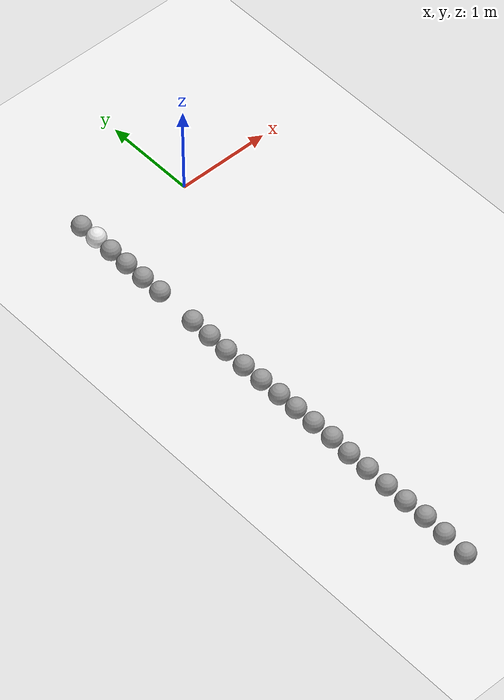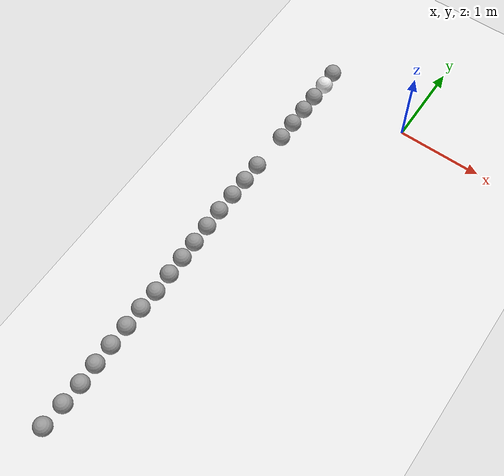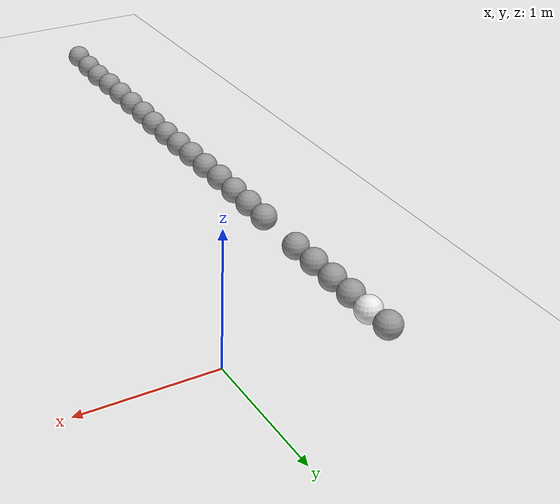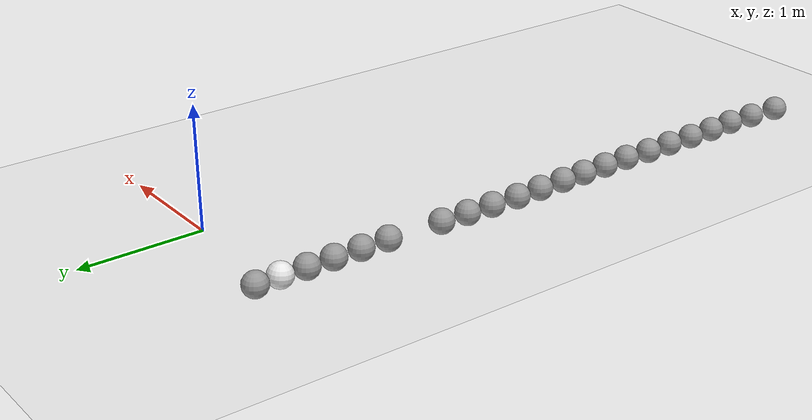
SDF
<sdf version="1.7">
 <world name="default">
  <model name="ground_plane">
   <static>1</static>
   <link name="link">
    <collision name="collision">
     <geometry><plane><normal>0 0 1</normal><size>100 100</size></plane></geometry>
     <surface>
      <contact><collide_bitmask>65535</collide_bitmask></contact>
      <friction><ode><mu>100</mu><mu2>50</mu2></ode></friction>
     </surface>
    </collision>
    <visual name="visual">
     <cast_shadows>0</cast_shadows>
     <geometry><plane><normal>0 0 1</normal><size>100 100</size></plane></geometry>
     <material>
      <script><uri>file://media/materials/scripts/gazebo.material</uri><name>Gazebo/White</name></script>
     </material>
    </visual>
   </link>
  </model>
  <model name="sphere">
   <link name="link_0">
    <inertial>
     <mass>1</mass>
     <inertia><ixx>0.1</ixx><ixy>0</ixy><ixz>0</ixz><iyy>0.1</iyy><iyz>0</iyz><izz>0.1</izz></inertia>
    </inertial>
    <visual name="visual">
     <geometry><sphere><radius>0.1</radius></sphere></geometry>
     <material>
      <lighting>1</lighting>
      <script><uri>file://media/materials/scripts/gazebo.material</uri><name>Gazebo/White</name></script>
      <shader type="pixel"><normal_map>__default__</normal_map></shader>
      <ambient>0.3 0.3 0.3 1</ambient>
      <diffuse>0.7 0.7 0.7 1</diffuse>
      <specular>0.01 0.01 0.01 1</specular>
      <emissive>0 0 0 1</emissive>
     </material>
    </visual>
    <collision name="collision">
     <geometry><sphere><radius>0.1</radius></sphere></geometry>
     <surface>
      <friction>
       <ode><mu>1</mu><mu2>1</mu2><fdir1>0 0 0</fdir1><slip1>0</slip1><slip2>0</slip2></ode>
       <torsional>
        <coefficient>1</coefficient>
        <patch_radius>0</patch_radius>
        <surface_radius>0</surface_radius>
        <use_patch_radius>1</use_patch_radius>
        <ode><slip>0</slip></ode>
       </torsional>
      </friction>
      <bounce><restitution_coefficient>0</restitution_coefficient><threshold>1e+06</threshold></bounce>
      <contact>
       <collide_without_contact>0</collide_without_contact>
       <collide_without_contact_bitmask>1</collide_without_contact_bitmask>
       <collide_bitmask>1</collide_bitmask>
       <ode>
        <soft_cfm>0</soft_cfm>
        <soft_erp>0.2</soft_erp>
        <kp>1e+13</kp>
        <kd>1</kd>
        <max_vel>0.01</max_vel>
        <min_depth>0</min_depth>
       </ode>
       <bullet>
        <split_impulse>1</split_impulse>
        <split_impulse_penetration_threshold>-0.01</split_impulse_penetration_threshold>
        <soft_cfm>0</soft_cfm>
        <soft_erp>0.2</soft_erp>
        <kp>1e+13</kp>
        <kd>1</kd>
       </bullet>
      </contact>
     </surface>
    </collision>
   </link>
   <static>0</static>
   <pose>-1.091 0.000207 0.1 0.097317 -0.000948 0.005574</pose>
  </model>
  <model name="sphere_0">
   <link name="link_0">
    <inertial>
     <mass>1</mass>
     <inertia><ixx>0.1</ixx><ixy>0</ixy><ixz>0</ixz><iyy>0.1</iyy><iyz>0</iyz><izz>0.1</izz></inertia>
    </inertial>
    <visual name="visual">
     <geometry><sphere><radius>0.1</radius></sphere></geometry>
     <material>
      <lighting>1</lighting>
      <script><uri>file://media/materials/scripts/gazebo.material</uri><name>Gazebo/Grey</name></script>
      <shader type="pixel"><normal_map>__default__</normal_map></shader>
      <ambient>0.3 0.3 0.3 1</ambient>
      <diffuse>0.7 0.7 0.7 1</diffuse>
      <specular>0.01 0.01 0.01 1</specular>
      <emissive>0 0 0 1</emissive>
     </material>
    </visual>
    <collision name="collision">
     <geometry><sphere><radius>0.1</radius></sphere></geometry>
     <surface>
      <friction>
       <ode><mu>1</mu><mu2>1</mu2><fdir1>0 0 0</fdir1><slip1>0</slip1><slip2>0</slip2></ode>
       <torsional>
        <coefficient>1</coefficient>
        <patch_radius>0</patch_radius>
        <surface_radius>0</surface_radius>
        <use_patch_radius>1</use_patch_radius>
        <ode><slip>0</slip></ode>
       </torsional>
      </friction>
      <bounce><restitution_coefficient>0</restitution_coefficient><threshold>1e+06</threshold></bounce>
      <contact>
       <collide_without_contact>0</collide_without_contact>
       <collide_without_contact_bitmask>1</collide_without_contact_bitmask>
       <collide_bitmask>1</collide_bitmask>
       <ode>
        <soft_cfm>0</soft_cfm>
        <soft_erp>0.2</soft_erp>
        <kp>1e+13</kp>
        <kd>1</kd>
        <max_vel>0.01</max_vel>
        <min_depth>0</min_depth>
       </ode>
       <bullet>
        <split_impulse>1</split_impulse>
        <split_impulse_penetration_threshold>-0.01</split_impulse_penetration_threshold>
        <soft_cfm>0</soft_cfm>
        <soft_erp>0.2</soft_erp>
        <kp>1e+13</kp>
        <kd>1</kd>
       </bullet>
      </contact>
     </surface>
    </collision>
   </link>
   <static>0</static>
   <pose>-1.10133 0.204448 0.1 -0.004823 -0.013797 -0.004458</pose>
  </model>
  <model name="sphere_8">
   <link name="link_0">
    <inertial>
     <mass>1</mass>
     <inertia><ixx>0.1</ixx><ixy>0</ixy><ixz>0</ixz><iyy>0.1</iyy><iyz>0</iyz><izz>0.1</izz></inertia>
    </inertial>
    <visual name="visual">
     <geometry><sphere><radius>0.1</radius></sphere></geometry>
     <material>
      <lighting>1</lighting>
      <script><uri>file://media/materials/scripts/gazebo.material</uri><name>Gazebo/Grey</name></script>
      <shader type="pixel"><normal_map>__default__</normal_map></shader>
      <ambient>0.3 0.3 0.3 1</ambient>
      <diffuse>0.7 0.7 0.7 1</diffuse>
      <specular>0.01 0.01 0.01 1</specular>
      <emissive>0 0 0 1</emissive>
     </material>
    </visual>
    <collision name="collision">
     <geometry><sphere><radius>0.1</radius></sphere></geometry>
     <surface>
      <friction>
       <ode><mu>1</mu><mu2>1</mu2><fdir1>0 0 0</fdir1><slip1>0</slip1><slip2>0</slip2></ode>
       <torsional>
        <coefficient>1</coefficient>
        <patch_radius>0</patch_radius>
        <surface_radius>0</surface_radius>
        <use_patch_radius>1</use_patch_radius>
        <ode><slip>0</slip></ode>
       </torsional>
      </friction>
      <bounce><restitution_coefficient>0</restitution_coefficient><threshold>1e+06</threshold></bounce>
      <contact>
       <collide_without_contact>0</collide_without_contact>
       <collide_without_contact_bitmask>1</collide_without_contact_bitmask>
       <collide_bitmask>1</collide_bitmask>
       <ode>
        <soft_cfm>0</soft_cfm>
        <soft_erp>0.2</soft_erp>
        <kp>1e+13</kp>
        <kd>1</kd>
        <max_vel>0.01</max_vel>
        <min_depth>0</min_depth>
       </ode>
       <bullet>
        <split_impulse>1</split_impulse>
        <split_impulse_penetration_threshold>-0.01</split_impulse_penetration_threshold>
        <soft_cfm>0</soft_cfm>
        <soft_erp>0.2</soft_erp>
        <kp>1e+13</kp>
        <kd>1</kd>
       </bullet>
      </contact>
     </surface>
    </collision>
   </link>
   <static>0</static>
   <pose>-1.09701 -0.2119 0.1 0 -0 0</pose>
  </model>
  <model name="sphere_9">
   <link name="link_0">
    <inertial>
     <mass>1</mass>
     <inertia><ixx>0.1</ixx><ixy>0</ixy><ixz>0</ixz><iyy>0.1</iyy><iyz>0</iyz><izz>0.1</izz></inertia>
    </inertial>
    <visual name="visual">
     <geometry><sphere><radius>0.1</radius></sphere></geometry>
     <material>
      <lighting>1</lighting>
      <script><uri>file://media/materials/scripts/gazebo.material</uri><name>Gazebo/Grey</name></script>
      <shader type="pixel"><normal_map>__default__</normal_map></shader>
      <ambient>0.3 0.3 0.3 1</ambient>
      <diffuse>0.7 0.7 0.7 1</diffuse>
      <specular>0.01 0.01 0.01 1</specular>
      <emissive>0 0 0 1</emissive>
     </material>
    </visual>
    <collision name="collision">
     <geometry><sphere><radius>0.1</radius></sphere></geometry>
     <surface>
      <friction>
       <ode><mu>1</mu><mu2>1</mu2><fdir1>0 0 0</fdir1><slip1>0</slip1><slip2>0</slip2></ode>
       <torsional>
        <coefficient>1</coefficient>
        <patch_radius>0</patch_radius>
        <surface_radius>0</surface_radius>
        <use_patch_radius>1</use_patch_radius>
        <ode><slip>0</slip></ode>
       </torsional>
      </friction>
      <bounce><restitution_coefficient>0</restitution_coefficient><threshold>1e+06</threshold></bounce>
      <contact>
       <collide_without_contact>0</collide_without_contact>
       <collide_without_contact_bitmask>1</collide_without_contact_bitmask>
       <collide_bitmask>1</collide_bitmask>
       <ode>
        <soft_cfm>0</soft_cfm>
        <soft_erp>0.2</soft_erp>
        <kp>1e+13</kp>
        <kd>1</kd>
        <max_vel>0.01</max_vel>
        <min_depth>0</min_depth>
       </ode>
       <bullet>
        <split_impulse>1</split_impulse>
        <split_impulse_penetration_threshold>-0.01</split_impulse_penetration_threshold>
        <soft_cfm>0</soft_cfm>
        <soft_erp>0.2</soft_erp>
        <kp>1e+13</kp>
        <kd>1</kd>
       </bullet>
      </contact>
     </surface>
    </collision>
   </link>
   <static>0</static>
   <pose>-1.09596 -0.433443 0.1 0 -0 0</pose>
  </model>
  <model name="sphere_10">
   <link name="link_0">
    <inertial>
     <mass>1</mass>
     <inertia><ixx>0.1</ixx><ixy>0</ixy><ixz>0</ixz><iyy>0.1</iyy><iyz>0</iyz><izz>0.1</izz></inertia>
    </inertial>
    <visual name="visual">
     <geometry><sphere><radius>0.1</radius></sphere></geometry>
     <material>
      <lighting>1</lighting>
      <script><uri>file://media/materials/scripts/gazebo.material</uri><name>Gazebo/Grey</name></script>
      <shader type="pixel"><normal_map>__default__</normal_map></shader>
      <ambient>0.3 0.3 0.3 1</ambient>
      <diffuse>0.7 0.7 0.7 1</diffuse>
      <specular>0.01 0.01 0.01 1</specular>
      <emissive>0 0 0 1</emissive>
     </material>
    </visual>
    <collision name="collision">
     <geometry><sphere><radius>0.1</radius></sphere></geometry>
     <surface>
      <friction>
       <ode><mu>1</mu><mu2>1</mu2><fdir1>0 0 0</fdir1><slip1>0</slip1><slip2>0</slip2></ode>
       <torsional>
        <coefficient>1</coefficient>
        <patch_radius>0</patch_radius>
        <surface_radius>0</surface_radius>
        <use_patch_radius>1</use_patch_radius>
        <ode><slip>0</slip></ode>
       </torsional>
      </friction>
      <bounce><restitution_coefficient>0</restitution_coefficient><threshold>1e+06</threshold></bounce>
      <contact>
       <collide_without_contact>0</collide_without_contact>
       <collide_without_contact_bitmask>1</collide_without_contact_bitmask>
       <collide_bitmask>1</collide_bitmask>
       <ode>
        <soft_cfm>0</soft_cfm>
        <soft_erp>0.2</soft_erp>
        <kp>1e+13</kp>
        <kd>1</kd>
        <max_vel>0.01</max_vel>
        <min_depth>0</min_depth>
       </ode>
       <bullet>
        <split_impulse>1</split_impulse>
        <split_impulse_penetration_threshold>-0.01</split_impulse_penetration_threshold>
        <soft_cfm>0</soft_cfm>
        <soft_erp>0.2</soft_erp>
        <kp>1e+13</kp>
        <kd>1</kd>
       </bullet>
      </contact>
     </surface>
    </collision>
   </link>
   <static>0</static>
   <pose>-1.09566 -0.665013 0.1 0 -0 0</pose>
  </model>
  <model name="sphere_11">
   <link name="link_0">
    <inertial>
     <mass>1</mass>
     <inertia><ixx>0.1</ixx><ixy>0</ixy><ixz>0</ixz><iyy>0.1</iyy><iyz>0</iyz><izz>0.1</izz></inertia>
    </inertial>
    <visual name="visual">
     <geometry><sphere><radius>0.1</radius></sphere></geometry>
     <material>
      <lighting>1</lighting>
      <script><uri>file://media/materials/scripts/gazebo.material</uri><name>Gazebo/Grey</name></script>
      <shader type="pixel"><normal_map>__default__</normal_map></shader>
      <ambient>0.3 0.3 0.3 1</ambient>
      <diffuse>0.7 0.7 0.7 1</diffuse>
      <specular>0.01 0.01 0.01 1</specular>
      <emissive>0 0 0 1</emissive>
     </material>
    </visual>
    <collision name="collision">
     <geometry><sphere><radius>0.1</radius></sphere></geometry>
     <surface>
      <friction>
       <ode><mu>1</mu><mu2>1</mu2><fdir1>0 0 0</fdir1><slip1>0</slip1><slip2>0</slip2></ode>
       <torsional>
        <coefficient>1</coefficient>
        <patch_radius>0</patch_radius>
        <surface_radius>0</surface_radius>
        <use_patch_radius>1</use_patch_radius>
        <ode><slip>0</slip></ode>
       </torsional>
      </friction>
      <bounce><restitution_coefficient>0</restitution_coefficient><threshold>1e+06</threshold></bounce>
      <contact>
       <collide_without_contact>0</collide_without_contact>
       <collide_without_contact_bitmask>1</collide_without_contact_bitmask>
       <collide_bitmask>1</collide_bitmask>
       <ode>
        <soft_cfm>0</soft_cfm>
        <soft_erp>0.2</soft_erp>
        <kp>1e+13</kp>
        <kd>1</kd>
        <max_vel>0.01</max_vel>
        <min_depth>0</min_depth>
       </ode>
       <bullet>
        <split_impulse>1</split_impulse>
        <split_impulse_penetration_threshold>-0.01</split_impulse_penetration_threshold>
        <soft_cfm>0</soft_cfm>
        <soft_erp>0.2</soft_erp>
        <kp>1e+13</kp>
        <kd>1</kd>
       </bullet>
      </contact>
     </surface>
    </collision>
   </link>
   <static>0</static>
   <pose>-1.0935 -0.901164 0.1 0 -0 0</pose>
  </model>
  <model name="sphere_25">
   <link name="link_0">
    <inertial>
     <mass>1</mass>
     <inertia><ixx>0.1</ixx><ixy>0</ixy><ixz>0</ixz><iyy>0.1</iyy><iyz>0</iyz><izz>0.1</izz></inertia>
    </inertial>
    <visual name="visual">
     <geometry><sphere><radius>0.1</radius></sphere></geometry>
     <material>
      <lighting>1</lighting>
      <script><uri>file://media/materials/scripts/gazebo.material</uri><name>Gazebo/Grey</name></script>
      <shader type="pixel"><normal_map>__default__</normal_map></shader>
      <ambient>0.3 0.3 0.3 1</ambient>
      <diffuse>0.7 0.7 0.7 1</diffuse>
      <specular>0.01 0.01 0.01 1</specular>
      <emissive>0 0 0 1</emissive>
     </material>
    </visual>
    <collision name="collision">
     <geometry><sphere><radius>0.1</radius></sphere></geometry>
     <surface>
      <friction>
       <ode><mu>1</mu><mu2>1</mu2><fdir1>0 0 0</fdir1><slip1>0</slip1><slip2>0</slip2></ode>
       <torsional>
        <coefficient>1</coefficient>
        <patch_radius>0</patch_radius>
        <surface_radius>0</surface_radius>
        <use_patch_radius>1</use_patch_radius>
        <ode><slip>0</slip></ode>
       </torsional>
      </friction>
      <bounce><restitution_coefficient>0</restitution_coefficient><threshold>1e+06</threshold></bounce>
      <contact>
       <collide_without_contact>0</collide_without_contact>
       <collide_without_contact_bitmask>1</collide_without_contact_bitmask>
       <collide_bitmask>1</collide_bitmask>
       <ode>
        <soft_cfm>0</soft_cfm>
        <soft_erp>0.2</soft_erp>
        <kp>1e+13</kp>
        <kd>1</kd>
        <max_vel>0.01</max_vel>
        <min_depth>0</min_depth>
       </ode>
       <bullet>
        <split_impulse>1</split_impulse>
        <split_impulse_penetration_threshold>-0.01</split_impulse_penetration_threshold>
        <soft_cfm>0</soft_cfm>
        <soft_erp>0.2</soft_erp>
        <kp>1e+13</kp>
        <kd>1</kd>
       </bullet>
      </contact>
     </surface>
    </collision>
   </link>
   <static>0</static>
   <pose>-1.10557 -1.36838 0.1 0 -0 0</pose>
  </model>
  <model name="sphere_26">
   <link name="link_0">
    <inertial>
     <mass>1</mass>
     <inertia><ixx>0.1</ixx><ixy>0</ixy><ixz>0</ixz><iyy>0.1</iyy><iyz>0</iyz><izz>0.1</izz></inertia>
    </inertial>
    <visual name="visual">
     <geometry><sphere><radius>0.1</radius></sphere></geometry>
     <material>
      <lighting>1</lighting>
      <script><uri>file://media/materials/scripts/gazebo.material</uri><name>Gazebo/Grey</name></script>
      <shader type="pixel"><normal_map>__default__</normal_map></shader>
      <ambient>0.3 0.3 0.3 1</ambient>
      <diffuse>0.7 0.7 0.7 1</diffuse>
      <specular>0.01 0.01 0.01 1</specular>
      <emissive>0 0 0 1</emissive>
     </material>
    </visual>
    <collision name="collision">
     <geometry><sphere><radius>0.1</radius></sphere></geometry>
     <surface>
      <friction>
       <ode><mu>1</mu><mu2>1</mu2><fdir1>0 0 0</fdir1><slip1>0</slip1><slip2>0</slip2></ode>
       <torsional>
        <coefficient>1</coefficient>
        <patch_radius>0</patch_radius>
        <surface_radius>0</surface_radius>
        <use_patch_radius>1</use_patch_radius>
        <ode><slip>0</slip></ode>
       </torsional>
      </friction>
      <bounce><restitution_coefficient>0</restitution_coefficient><threshold>1e+06</threshold></bounce>
      <contact>
       <collide_without_contact>0</collide_without_contact>
       <collide_without_contact_bitmask>1</collide_without_contact_bitmask>
       <collide_bitmask>1</collide_bitmask>
       <ode>
        <soft_cfm>0</soft_cfm>
        <soft_erp>0.2</soft_erp>
        <kp>1e+13</kp>
        <kd>1</kd>
        <max_vel>0.01</max_vel>
        <min_depth>0</min_depth>
       </ode>
       <bullet>
        <split_impulse>1</split_impulse>
        <split_impulse_penetration_threshold>-0.01</split_impulse_penetration_threshold>
        <soft_cfm>0</soft_cfm>
        <soft_erp>0.2</soft_erp>
        <kp>1e+13</kp>
        <kd>1</kd>
       </bullet>
      </contact>
     </surface>
    </collision>
   </link>
   <static>0</static>
   <pose>-1.10936 -1.60581 0.1 0 -0 0</pose>
  </model>
  <model name="sphere_27">
   <link name="link_0">
    <inertial>
     <mass>1</mass>
     <inertia><ixx>0.1</ixx><ixy>0</ixy><ixz>0</ixz><iyy>0.1</iyy><iyz>0</iyz><izz>0.1</izz></inertia>
    </inertial>
    <visual name="visual">
     <geometry><sphere><radius>0.1</radius></sphere></geometry>
     <material>
      <lighting>1</lighting>
      <script><uri>file://media/materials/scripts/gazebo.material</uri><name>Gazebo/Grey</name></script>
      <shader type="pixel"><normal_map>__default__</normal_map></shader>
      <ambient>0.3 0.3 0.3 1</ambient>
      <diffuse>0.7 0.7 0.7 1</diffuse>
      <specular>0.01 0.01 0.01 1</specular>
      <emissive>0 0 0 1</emissive>
     </material>
    </visual>
    <collision name="collision">
     <geometry><sphere><radius>0.1</radius></sphere></geometry>
     <surface>
      <friction>
       <ode><mu>1</mu><mu2>1</mu2><fdir1>0 0 0</fdir1><slip1>0</slip1><slip2>0</slip2></ode>
       <torsional>
        <coefficient>1</coefficient>
        <patch_radius>0</patch_radius>
        <surface_radius>0</surface_radius>
        <use_patch_radius>1</use_patch_radius>
        <ode><slip>0</slip></ode>
       </torsional>
      </friction>
      <bounce><restitution_coefficient>0</restitution_coefficient><threshold>1e+06</threshold></bounce>
      <contact>
       <collide_without_contact>0</collide_without_contact>
       <collide_without_contact_bitmask>1</collide_without_contact_bitmask>
       <collide_bitmask>1</collide_bitmask>
       <ode>
        <soft_cfm>0</soft_cfm>
        <soft_erp>0.2</soft_erp>
        <kp>1e+13</kp>
        <kd>1</kd>
        <max_vel>0.01</max_vel>
        <min_depth>0</min_depth>
       </ode>
       <bullet>
        <split_impulse>1</split_impulse>
        <split_impulse_penetration_threshold>-0.01</split_impulse_penetration_threshold>
        <soft_cfm>0</soft_cfm>
        <soft_erp>0.2</soft_erp>
        <kp>1e+13</kp>
        <kd>1</kd>
       </bullet>
      </contact>
     </surface>
    </collision>
   </link>
   <static>0</static>
   <pose>-1.11321 -1.83621 0.1 0 -0 0</pose>
  </model>
  <model name="sphere_28">
   <link name="link_0">
    <inertial>
     <mass>1</mass>
     <inertia><ixx>0.1</ixx><ixy>0</ixy><ixz>0</ixz><iyy>0.1</iyy><iyz>0</iyz><izz>0.1</izz></inertia>
    </inertial>
    <visual name="visual">
     <geometry><sphere><radius>0.1</radius></sphere></geometry>
     <material>
      <lighting>1</lighting>
      <script><uri>file://media/materials/scripts/gazebo.material</uri><name>Gazebo/Grey</name></script>
      <shader type="pixel"><normal_map>__default__</normal_map></shader>
      <ambient>0.3 0.3 0.3 1</ambient>
      <diffuse>0.7 0.7 0.7 1</diffuse>
      <specular>0.01 0.01 0.01 1</specular>
      <emissive>0 0 0 1</emissive>
     </material>
    </visual>
    <collision name="collision">
     <geometry><sphere><radius>0.1</radius></sphere></geometry>
     <surface>
      <friction>
       <ode><mu>1</mu><mu2>1</mu2><fdir1>0 0 0</fdir1><slip1>0</slip1><slip2>0</slip2></ode>
       <torsional>
        <coefficient>1</coefficient>
        <patch_radius>0</patch_radius>
        <surface_radius>0</surface_radius>
        <use_patch_radius>1</use_patch_radius>
        <ode><slip>0</slip></ode>
       </torsional>
      </friction>
      <bounce><restitution_coefficient>0</restitution_coefficient><threshold>1e+06</threshold></bounce>
      <contact>
       <collide_without_contact>0</collide_without_contact>
       <collide_without_contact_bitmask>1</collide_without_contact_bitmask>
       <collide_bitmask>1</collide_bitmask>
       <ode>
        <soft_cfm>0</soft_cfm>
        <soft_erp>0.2</soft_erp>
        <kp>1e+13</kp>
        <kd>1</kd>
        <max_vel>0.01</max_vel>
        <min_depth>0</min_depth>
       </ode>
       <bullet>
        <split_impulse>1</split_impulse>
        <split_impulse_penetration_threshold>-0.01</split_impulse_penetration_threshold>
        <soft_cfm>0</soft_cfm>
        <soft_erp>0.2</soft_erp>
        <kp>1e+13</kp>
        <kd>1</kd>
       </bullet>
      </contact>
     </surface>
    </collision>
   </link>
   <static>0</static>
   <pose>-1.11698 -2.07804 0.1 0 -0 0</pose>
  </model>
  <model name="sphere_29">
   <link name="link_0">
    <inertial>
     <mass>1</mass>
     <inertia><ixx>0.1</ixx><ixy>0</ixy><ixz>0</ixz><iyy>0.1</iyy><iyz>0</iyz><izz>0.1</izz></inertia>
    </inertial>
    <visual name="visual">
     <geometry><sphere><radius>0.1</radius></sphere></geometry>
     <material>
      <lighting>1</lighting>
      <script><uri>file://media/materials/scripts/gazebo.material</uri><name>Gazebo/Grey</name></script>
      <shader type="pixel"><normal_map>__default__</normal_map></shader>
      <ambient>0.3 0.3 0.3 1</ambient>
      <diffuse>0.7 0.7 0.7 1</diffuse>
      <specular>0.01 0.01 0.01 1</specular>
      <emissive>0 0 0 1</emissive>
     </material>
    </visual>
    <collision name="collision">
     <geometry><sphere><radius>0.1</radius></sphere></geometry>
     <surface>
      <friction>
       <ode><mu>1</mu><mu2>1</mu2><fdir1>0 0 0</fdir1><slip1>0</slip1><slip2>0</slip2></ode>
       <torsional>
        <coefficient>1</coefficient>
        <patch_radius>0</patch_radius>
        <surface_radius>0</surface_radius>
        <use_patch_radius>1</use_patch_radius>
        <ode><slip>0</slip></ode>
       </torsional>
      </friction>
      <bounce><restitution_coefficient>0</restitution_coefficient><threshold>1e+06</threshold></bounce>
      <contact>
       <collide_without_contact>0</collide_without_contact>
       <collide_without_contact_bitmask>1</collide_without_contact_bitmask>
       <collide_bitmask>1</collide_bitmask>
       <ode>
        <soft_cfm>0</soft_cfm>
        <soft_erp>0.2</soft_erp>
        <kp>1e+13</kp>
        <kd>1</kd>
        <max_vel>0.01</max_vel>
        <min_depth>0</min_depth>
       </ode>
       <bullet>
        <split_impulse>1</split_impulse>
        <split_impulse_penetration_threshold>-0.01</split_impulse_penetration_threshold>
        <soft_cfm>0</soft_cfm>
        <soft_erp>0.2</soft_erp>
        <kp>1e+13</kp>
        <kd>1</kd>
       </bullet>
      </contact>
     </surface>
    </collision>
   </link>
   <static>0</static>
   <pose>-1.11081 -2.30897 0.1 0 -0 0</pose>
  </model>
  <model name="sphere_30">
   <link name="link_0">
    <inertial>
     <mass>1</mass>
     <inertia><ixx>0.1</ixx><ixy>0</ixy><ixz>0</ixz><iyy>0.1</iyy><iyz>0</iyz><izz>0.1</izz></inertia>
    </inertial>
    <visual name="visual">
     <geometry><sphere><radius>0.1</radius></sphere></geometry>
     <material>
      <lighting>1</lighting>
      <script><uri>file://media/materials/scripts/gazebo.material</uri><name>Gazebo/Grey</name></script>
      <shader type="pixel"><normal_map>__default__</normal_map></shader>
      <ambient>0.3 0.3 0.3 1</ambient>
      <diffuse>0.7 0.7 0.7 1</diffuse>
      <specular>0.01 0.01 0.01 1</specular>
      <emissive>0 0 0 1</emissive>
     </material>
    </visual>
    <collision name="collision">
     <geometry><sphere><radius>0.1</radius></sphere></geometry>
     <surface>
      <friction>
       <ode><mu>1</mu><mu2>1</mu2><fdir1>0 0 0</fdir1><slip1>0</slip1><slip2>0</slip2></ode>
       <torsional>
        <coefficient>1</coefficient>
        <patch_radius>0</patch_radius>
        <surface_radius>0</surface_radius>
        <use_patch_radius>1</use_patch_radius>
        <ode><slip>0</slip></ode>
       </torsional>
      </friction>
      <bounce><restitution_coefficient>0</restitution_coefficient><threshold>1e+06</threshold></bounce>
      <contact>
       <collide_without_contact>0</collide_without_contact>
       <collide_without_contact_bitmask>1</collide_without_contact_bitmask>
       <collide_bitmask>1</collide_bitmask>
       <ode>
        <soft_cfm>0</soft_cfm>
        <soft_erp>0.2</soft_erp>
        <kp>1e+13</kp>
        <kd>1</kd>
        <max_vel>0.01</max_vel>
        <min_depth>0</min_depth>
       </ode>
       <bullet>
        <split_impulse>1</split_impulse>
        <split_impulse_penetration_threshold>-0.01</split_impulse_penetration_threshold>
        <soft_cfm>0</soft_cfm>
        <soft_erp>0.2</soft_erp>
        <kp>1e+13</kp>
        <kd>1</kd>
       </bullet>
      </contact>
     </surface>
    </collision>
   </link>
   <static>0</static>
   <pose>-1.10719 -2.54269 0.1 0 -0 0</pose>
  </model>
  <model name="sphere_31">
   <link name="link_0">
    <inertial>
     <mass>1</mass>
     <inertia><ixx>0.1</ixx><ixy>0</ixy><ixz>0</ixz><iyy>0.1</iyy><iyz>0</iyz><izz>0.1</izz></inertia>
    </inertial>
    <visual name="visual">
     <geometry><sphere><radius>0.1</radius></sphere></geometry>
     <material>
      <lighting>1</lighting>
      <script><uri>file://media/materials/scripts/gazebo.material</uri><name>Gazebo/Grey</name></script>
      <shader type="pixel"><normal_map>__default__</normal_map></shader>
      <ambient>0.3 0.3 0.3 1</ambient>
      <diffuse>0.7 0.7 0.7 1</diffuse>
      <specular>0.01 0.01 0.01 1</specular>
      <emissive>0 0 0 1</emissive>
     </material>
    </visual>
    <collision name="collision">
     <geometry><sphere><radius>0.1</radius></sphere></geometry>
     <surface>
      <friction>
       <ode><mu>1</mu><mu2>1</mu2><fdir1>0 0 0</fdir1><slip1>0</slip1><slip2>0</slip2></ode>
       <torsional>
        <coefficient>1</coefficient>
        <patch_radius>0</patch_radius>
        <surface_radius>0</surface_radius>
        <use_patch_radius>1</use_patch_radius>
        <ode><slip>0</slip></ode>
       </torsional>
      </friction>
      <bounce><restitution_coefficient>0</restitution_coefficient><threshold>1e+06</threshold></bounce>
      <contact>
       <collide_without_contact>0</collide_without_contact>
       <collide_without_contact_bitmask>1</collide_without_contact_bitmask>
       <collide_bitmask>1</collide_bitmask>
       <ode>
        <soft_cfm>0</soft_cfm>
        <soft_erp>0.2</soft_erp>
        <kp>1e+13</kp>
        <kd>1</kd>
        <max_vel>0.01</max_vel>
        <min_depth>0</min_depth>
       </ode>
       <bullet>
        <split_impulse>1</split_impulse>
        <split_impulse_penetration_threshold>-0.01</split_impulse_penetration_threshold>
        <soft_cfm>0</soft_cfm>
        <soft_erp>0.2</soft_erp>
        <kp>1e+13</kp>
        <kd>1</kd>
       </bullet>
      </contact>
     </surface>
    </collision>
   </link>
   <static>0</static>
   <pose>-1.10297 -2.7617 0.1 0 -0 0</pose>
  </model>
  <model name="sphere_32">
   <link name="link_0">
    <inertial>
     <mass>1</mass>
     <inertia><ixx>0.1</ixx><ixy>0</ixy><ixz>0</ixz><iyy>0.1</iyy><iyz>0</iyz><izz>0.1</izz></inertia>
    </inertial>
    <visual name="visual">
     <geometry><sphere><radius>0.1</radius></sphere></geometry>
     <material>
      <lighting>1</lighting>
      <script><uri>file://media/materials/scripts/gazebo.material</uri><name>Gazebo/Grey</name></script>
      <shader type="pixel"><normal_map>__default__</normal_map></shader>
      <ambient>0.3 0.3 0.3 1</ambient>
      <diffuse>0.7 0.7 0.7 1</diffuse>
      <specular>0.01 0.01 0.01 1</specular>
      <emissive>0 0 0 1</emissive>
     </material>
    </visual>
    <collision name="collision">
     <geometry><sphere><radius>0.1</radius></sphere></geometry>
     <surface>
      <friction>
       <ode><mu>1</mu><mu2>1</mu2><fdir1>0 0 0</fdir1><slip1>0</slip1><slip2>0</slip2></ode>
       <torsional>
        <coefficient>1</coefficient>
        <patch_radius>0</patch_radius>
        <surface_radius>0</surface_radius>
        <use_patch_radius>1</use_patch_radius>
        <ode><slip>0</slip></ode>
       </torsional>
      </friction>
      <bounce><restitution_coefficient>0</restitution_coefficient><threshold>1e+06</threshold></bounce>
      <contact>
       <collide_without_contact>0</collide_without_contact>
       <collide_without_contact_bitmask>1</collide_without_contact_bitmask>
       <collide_bitmask>1</collide_bitmask>
       <ode>
        <soft_cfm>0</soft_cfm>
        <soft_erp>0.2</soft_erp>
        <kp>1e+13</kp>
        <kd>1</kd>
        <max_vel>0.01</max_vel>
        <min_depth>0</min_depth>
       </ode>
       <bullet>
        <split_impulse>1</split_impulse>
        <split_impulse_penetration_threshold>-0.01</split_impulse_penetration_threshold>
        <soft_cfm>0</soft_cfm>
        <soft_erp>0.2</soft_erp>
        <kp>1e+13</kp>
        <kd>1</kd>
       </bullet>
      </contact>
     </surface>
    </collision>
   </link>
   <static>0</static>
   <pose>-1.09982 -2.98994 0.1 0 -0 0</pose>
  </model>
  <model name="sphere_33">
   <link name="link_0">
    <inertial>
     <mass>1</mass>
     <inertia><ixx>0.1</ixx><ixy>0</ixy><ixz>0</ixz><iyy>0.1</iyy><iyz>0</iyz><izz>0.1</izz></inertia>
    </inertial>
    <visual name="visual">
     <geometry><sphere><radius>0.1</radius></sphere></geometry>
     <material>
      <lighting>1</lighting>
      <script><uri>file://media/materials/scripts/gazebo.material</uri><name>Gazebo/Grey</name></script>
      <shader type="pixel"><normal_map>__default__</normal_map></shader>
      <ambient>0.3 0.3 0.3 1</ambient>
      <diffuse>0.7 0.7 0.7 1</diffuse>
      <specular>0.01 0.01 0.01 1</specular>
      <emissive>0 0 0 1</emissive>
     </material>
    </visual>
    <collision name="collision">
     <geometry><sphere><radius>0.1</radius></sphere></geometry>
     <surface>
      <friction>
       <ode><mu>1</mu><mu2>1</mu2><fdir1>0 0 0</fdir1><slip1>0</slip1><slip2>0</slip2></ode>
       <torsional>
        <coefficient>1</coefficient>
        <patch_radius>0</patch_radius>
        <surface_radius>0</surface_radius>
        <use_patch_radius>1</use_patch_radius>
        <ode><slip>0</slip></ode>
       </torsional>
      </friction>
      <bounce><restitution_coefficient>0</restitution_coefficient><threshold>1e+06</threshold></bounce>
      <contact>
       <collide_without_contact>0</collide_without_contact>
       <collide_without_contact_bitmask>1</collide_without_contact_bitmask>
       <collide_bitmask>1</collide_bitmask>
       <ode>
        <soft_cfm>0</soft_cfm>
        <soft_erp>0.2</soft_erp>
        <kp>1e+13</kp>
        <kd>1</kd>
        <max_vel>0.01</max_vel>
        <min_depth>0</min_depth>
       </ode>
       <bullet>
        <split_impulse>1</split_impulse>
        <split_impulse_penetration_threshold>-0.01</split_impulse_penetration_threshold>
        <soft_cfm>0</soft_cfm>
        <soft_erp>0.2</soft_erp>
        <kp>1e+13</kp>
        <kd>1</kd>
       </bullet>
      </contact>
     </surface>
    </collision>
   </link>
   <static>0</static>
   <pose>-1.09408 -3.22588 0.1 0 -0 0</pose>
  </model>
  <model name="sphere_34">
   <link name="link_0">
    <inertial>
     <mass>1</mass>
     <inertia><ixx>0.1</ixx><ixy>0</ixy><ixz>0</ixz><iyy>0.1</iyy><iyz>0</iyz><izz>0.1</izz></inertia>
    </inertial>
    <visual name="visual">
     <geometry><sphere><radius>0.1</radius></sphere></geometry>
     <material>
      <lighting>1</lighting>
      <script><uri>file://media/materials/scripts/gazebo.material</uri><name>Gazebo/Grey</name></script>
      <shader type="pixel"><normal_map>__default__</normal_map></shader>
      <ambient>0.3 0.3 0.3 1</ambient>
      <diffuse>0.7 0.7 0.7 1</diffuse>
      <specular>0.01 0.01 0.01 1</specular>
      <emissive>0 0 0 1</emissive>
     </material>
    </visual>
    <collision name="collision">
     <geometry><sphere><radius>0.1</radius></sphere></geometry>
     <surface>
      <friction>
       <ode><mu>1</mu><mu2>1</mu2><fdir1>0 0 0</fdir1><slip1>0</slip1><slip2>0</slip2></ode>
       <torsional>
        <coefficient>1</coefficient>
        <patch_radius>0</patch_radius>
        <surface_radius>0</surface_radius>
        <use_patch_radius>1</use_patch_radius>
        <ode><slip>0</slip></ode>
       </torsional>
      </friction>
      <bounce><restitution_coefficient>0</restitution_coefficient><threshold>1e+06</threshold></bounce>
      <contact>
       <collide_without_contact>0</collide_without_contact>
       <collide_without_contact_bitmask>1</collide_without_contact_bitmask>
       <collide_bitmask>1</collide_bitmask>
       <ode>
        <soft_cfm>0</soft_cfm>
        <soft_erp>0.2</soft_erp>
        <kp>1e+13</kp>
        <kd>1</kd>
        <max_vel>0.01</max_vel>
        <min_depth>0</min_depth>
       </ode>
       <bullet>
        <split_impulse>1</split_impulse>
        <split_impulse_penetration_threshold>-0.01</split_impulse_penetration_threshold>
        <soft_cfm>0</soft_cfm>
        <soft_erp>0.2</soft_erp>
        <kp>1e+13</kp>
        <kd>1</kd>
       </bullet>
      </contact>
     </surface>
    </collision>
   </link>
   <static>0</static>
   <pose>-1.10557 -3.45938 0.1 0 -0 0</pose>
  </model>
  <model name="sphere_35">
   <link name="link_0">
    <inertial>
     <mass>1</mass>
     <inertia><ixx>0.1</ixx><ixy>0</ixy><ixz>0</ixz><iyy>0.1</iyy><iyz>0</iyz><izz>0.1</izz></inertia>
    </inertial>
    <visual name="visual">
     <geometry><sphere><radius>0.1</radius></sphere></geometry>
     <material>
      <lighting>1</lighting>
      <script><uri>file://media/materials/scripts/gazebo.material</uri><name>Gazebo/Grey</name></script>
      <shader type="pixel"><normal_map>__default__</normal_map></shader>
      <ambient>0.3 0.3 0.3 1</ambient>
      <diffuse>0.7 0.7 0.7 1</diffuse>
      <specular>0.01 0.01 0.01 1</specular>
      <emissive>0 0 0 1</emissive>
     </material>
    </visual>
    <collision name="collision">
     <geometry><sphere><radius>0.1</radius></sphere></geometry>
     <surface>
      <friction>
       <ode><mu>1</mu><mu2>1</mu2><fdir1>0 0 0</fdir1><slip1>0</slip1><slip2>0</slip2></ode>
       <torsional>
        <coefficient>1</coefficient>
        <patch_radius>0</patch_radius>
        <surface_radius>0</surface_radius>
        <use_patch_radius>1</use_patch_radius>
        <ode><slip>0</slip></ode>
       </torsional>
      </friction>
      <bounce><restitution_coefficient>0</restitution_coefficient><threshold>1e+06</threshold></bounce>
      <contact>
       <collide_without_contact>0</collide_without_contact>
       <collide_without_contact_bitmask>1</collide_without_contact_bitmask>
       <collide_bitmask>1</collide_bitmask>
       <ode>
        <soft_cfm>0</soft_cfm>
        <soft_erp>0.2</soft_erp>
        <kp>1e+13</kp>
        <kd>1</kd>
        <max_vel>0.01</max_vel>
        <min_depth>0</min_depth>
       </ode>
       <bullet>
        <split_impulse>1</split_impulse>
        <split_impulse_penetration_threshold>-0.01</split_impulse_penetration_threshold>
        <soft_cfm>0</soft_cfm>
        <soft_erp>0.2</soft_erp>
        <kp>1e+13</kp>
        <kd>1</kd>
       </bullet>
      </contact>
     </surface>
    </collision>
   </link>
   <static>0</static>
   <pose>-1.10306 -3.69614 0.1 0 -0 0</pose>
  </model>
  <model name="sphere_36">
   <link name="link_0">
    <inertial>
     <mass>1</mass>
     <inertia><ixx>0.1</ixx><ixy>0</ixy><ixz>0</ixz><iyy>0.1</iyy><iyz>0</iyz><izz>0.1</izz></inertia>
    </inertial>
    <visual name="visual">
     <geometry><sphere><radius>0.1</radius></sphere></geometry>
     <material>
      <lighting>1</lighting>
      <script><uri>file://media/materials/scripts/gazebo.material</uri><name>Gazebo/Grey</name></script>
      <shader type="pixel"><normal_map>__default__</normal_map></shader>
      <ambient>0.3 0.3 0.3 1</ambient>
      <diffuse>0.7 0.7 0.7 1</diffuse>
      <specular>0.01 0.01 0.01 1</specular>
      <emissive>0 0 0 1</emissive>
     </material>
    </visual>
    <collision name="collision">
     <geometry><sphere><radius>0.1</radius></sphere></geometry>
     <surface>
      <friction>
       <ode><mu>1</mu><mu2>1</mu2><fdir1>0 0 0</fdir1><slip1>0</slip1><slip2>0</slip2></ode>
       <torsional>
        <coefficient>1</coefficient>
        <patch_radius>0</patch_radius>
        <surface_radius>0</surface_radius>
        <use_patch_radius>1</use_patch_radius>
        <ode><slip>0</slip></ode>
       </torsional>
      </friction>
      <bounce><restitution_coefficient>0</restitution_coefficient><threshold>1e+06</threshold></bounce>
      <contact>
       <collide_without_contact>0</collide_without_contact>
       <collide_without_contact_bitmask>1</collide_without_contact_bitmask>
       <collide_bitmask>1</collide_bitmask>
       <ode>
        <soft_cfm>0</soft_cfm>
        <soft_erp>0.2</soft_erp>
        <kp>1e+13</kp>
        <kd>1</kd>
        <max_vel>0.01</max_vel>
        <min_depth>0</min_depth>
       </ode>
       <bullet>
        <split_impulse>1</split_impulse>
        <split_impulse_penetration_threshold>-0.01</split_impulse_penetration_threshold>
        <soft_cfm>0</soft_cfm>
        <soft_erp>0.2</soft_erp>
        <kp>1e+13</kp>
        <kd>1</kd>
       </bullet>
      </contact>
     </surface>
    </collision>
   </link>
   <static>0</static>
   <pose>-1.10499 -3.94235 0.1 0 -0 0</pose>
  </model>
  <model name="sphere_103">
   <link name="link_0">
    <inertial>
     <mass>1</mass>
     <inertia><ixx>0.1</ixx><ixy>0</ixy><ixz>0</ixz><iyy>0.1</iyy><iyz>0</iyz><izz>0.1</izz></inertia>
    </inertial>
    <visual name="visual">
     <geometry><sphere><radius>0.1</radius></sphere></geometry>
     <material>
      <lighting>1</lighting>
      <script><uri>file://media/materials/scripts/gazebo.material</uri><name>Gazebo/Grey</name></script>
      <shader type="pixel"><normal_map>__default__</normal_map></shader>
      <ambient>0.3 0.3 0.3 1</ambient>
      <diffuse>0.7 0.7 0.7 1</diffuse>
      <specular>0.01 0.01 0.01 1</specular>
      <emissive>0 0 0 1</emissive>
     </material>
    </visual>
    <collision name="collision">
     <geometry><sphere><radius>0.1</radius></sphere></geometry>
     <surface>
      <friction>
       <ode><mu>1</mu><mu2>1</mu2><fdir1>0 0 0</fdir1><slip1>0</slip1><slip2>0</slip2></ode>
       <torsional>
        <coefficient>1</coefficient>
        <patch_radius>0</patch_radius>
        <surface_radius>0</surface_radius>
        <use_patch_radius>1</use_patch_radius>
        <ode><slip>0</slip></ode>
       </torsional>
      </friction>
      <bounce><restitution_coefficient>0</restitution_coefficient><threshold>1e+06</threshold></bounce>
      <contact>
       <collide_without_contact>0</collide_without_contact>
       <collide_without_contact_bitmask>1</collide_without_contact_bitmask>
       <collide_bitmask>1</collide_bitmask>
       <ode>
        <soft_cfm>0</soft_cfm>
        <soft_erp>0.2</soft_erp>
        <kp>1e+13</kp>
        <kd>1</kd>
        <max_vel>0.01</max_vel>
        <min_depth>0</min_depth>
       </ode>
       <bullet>
        <split_impulse>1</split_impulse>
        <split_impulse_penetration_threshold>-0.01</split_impulse_penetration_threshold>
        <soft_cfm>0</soft_cfm>
        <soft_erp>0.2</soft_erp>
        <kp>1e+13</kp>
        <kd>1</kd>
       </bullet>
      </contact>
     </surface>
    </collision>
   </link>
   <static>0</static>
   <pose>-1.10405 -4.18372 0.1 0 -0 0</pose>
  </model>
  <model name="sphere_104">
   <link name="link_0">
    <inertial>
     <mass>1</mass>
     <inertia><ixx>0.1</ixx><ixy>0</ixy><ixz>0</ixz><iyy>0.1</iyy><iyz>0</iyz><izz>0.1</izz></inertia>
    </inertial>
    <visual name="visual">
     <geometry><sphere><radius>0.1</radius></sphere></geometry>
     <material>
      <lighting>1</lighting>
      <script><uri>file://media/materials/scripts/gazebo.material</uri><name>Gazebo/Grey</name></script>
      <shader type="pixel"><normal_map>__default__</normal_map></shader>
      <ambient>0.3 0.3 0.3 1</ambient>
      <diffuse>0.7 0.7 0.7 1</diffuse>
      <specular>0.01 0.01 0.01 1</specular>
      <emissive>0 0 0 1</emissive>
     </material>
    </visual>
    <collision name="collision">
     <geometry><sphere><radius>0.1</radius></sphere></geometry>
     <surface>
      <friction>
       <ode><mu>1</mu><mu2>1</mu2><fdir1>0 0 0</fdir1><slip1>0</slip1><slip2>0</slip2></ode>
       <torsional>
        <coefficient>1</coefficient>
        <patch_radius>0</patch_radius>
        <surface_radius>0</surface_radius>
        <use_patch_radius>1</use_patch_radius>
        <ode><slip>0</slip></ode>
       </torsional>
      </friction>
      <bounce><restitution_coefficient>0</restitution_coefficient><threshold>1e+06</threshold></bounce>
      <contact>
       <collide_without_contact>0</collide_without_contact>
       <collide_without_contact_bitmask>1</collide_without_contact_bitmask>
       <collide_bitmask>1</collide_bitmask>
       <ode>
        <soft_cfm>0</soft_cfm>
        <soft_erp>0.2</soft_erp>
        <kp>1e+13</kp>
        <kd>1</kd>
        <max_vel>0.01</max_vel>
        <min_depth>0</min_depth>
       </ode>
       <bullet>
        <split_impulse>1</split_impulse>
        <split_impulse_penetration_threshold>-0.01</split_impulse_penetration_threshold>
        <soft_cfm>0</soft_cfm>
        <soft_erp>0.2</soft_erp>
        <kp>1e+13</kp>
        <kd>1</kd>
       </bullet>
      </contact>
     </surface>
    </collision>
   </link>
   <static>0</static>
   <pose>-1.09386 -4.4229 0.1 0 -0 0</pose>
  </model>
  <model name="sphere_109">
   <link name="link_0">
    <inertial>
     <mass>1</mass>
     <inertia><ixx>0.1</ixx><ixy>0</ixy><ixz>0</ixz><iyy>0.1</iyy><iyz>0</iyz><izz>0.1</izz></inertia>
    </inertial>
    <visual name="visual">
     <geometry><sphere><radius>0.1</radius></sphere></geometry>
     <material>
      <lighting>1</lighting>
      <script><uri>file://media/materials/scripts/gazebo.material</uri><name>Gazebo/Grey</name></script>
      <shader type="pixel"><normal_map>__default__</normal_map></shader>
      <ambient>0.3 0.3 0.3 1</ambient>
      <diffuse>0.7 0.7 0.7 1</diffuse>
      <specular>0.01 0.01 0.01 1</specular>
      <emissive>0 0 0 1</emissive>
     </material>
    </visual>
    <collision name="collision">
     <geometry><sphere><radius>0.1</radius></sphere></geometry>
     <surface>
      <friction>
       <ode><mu>1</mu><mu2>1</mu2><fdir1>0 0 0</fdir1><slip1>0</slip1><slip2>0</slip2></ode>
       <torsional>
        <coefficient>1</coefficient>
        <patch_radius>0</patch_radius>
        <surface_radius>0</surface_radius>
        <use_patch_radius>1</use_patch_radius>
        <ode><slip>0</slip></ode>
       </torsional>
      </friction>
      <bounce><restitution_coefficient>0</restitution_coefficient><threshold>1e+06</threshold></bounce>
      <contact>
       <collide_without_contact>0</collide_without_contact>
       <collide_without_contact_bitmask>1</collide_without_contact_bitmask>
       <collide_bitmask>1</collide_bitmask>
       <ode>
        <soft_cfm>0</soft_cfm>
        <soft_erp>0.2</soft_erp>
        <kp>1e+13</kp>
        <kd>1</kd>
        <max_vel>0.01</max_vel>
        <min_depth>0</min_depth>
       </ode>
       <bullet>
        <split_impulse>1</split_impulse>
        <split_impulse_penetration_threshold>-0.01</split_impulse_penetration_threshold>
        <soft_cfm>0</soft_cfm>
        <soft_erp>0.2</soft_erp>
        <kp>1e+13</kp>
        <kd>1</kd>
       </bullet>
      </contact>
     </surface>
    </collision>
   </link>
   <static>0</static>
   <pose>-1.10279 -4.67174 0.1 0 -0 0</pose>
  </model>
  <model name="sphere_110">
   <link name="link_0">
    <inertial>
     <mass>1</mass>
     <inertia><ixx>0.1</ixx><ixy>0</ixy><ixz>0</ixz><iyy>0.1</iyy><iyz>0</iyz><izz>0.1</izz></inertia>
    </inertial>
    <visual name="visual">
     <geometry><sphere><radius>0.1</radius></sphere></geometry>
     <material>
      <lighting>1</lighting>
      <script><uri>file://media/materials/scripts/gazebo.material</uri><name>Gazebo/Grey</name></script>
      <shader type="pixel"><normal_map>__default__</normal_map></shader>
      <ambient>0.3 0.3 0.3 1</ambient>
      <diffuse>0.7 0.7 0.7 1</diffuse>
      <specular>0.01 0.01 0.01 1</specular>
      <emissive>0 0 0 1</emissive>
     </material>
    </visual>
    <collision name="collision">
     <geometry><sphere><radius>0.1</radius></sphere></geometry>
     <surface>
      <friction>
       <ode><mu>1</mu><mu2>1</mu2><fdir1>0 0 0</fdir1><slip1>0</slip1><slip2>0</slip2></ode>
       <torsional>
        <coefficient>1</coefficient>
        <patch_radius>0</patch_radius>
        <surface_radius>0</surface_radius>
        <use_patch_radius>1</use_patch_radius>
        <ode><slip>0</slip></ode>
       </torsional>
      </friction>
      <bounce><restitution_coefficient>0</restitution_coefficient><threshold>1e+06</threshold></bounce>
      <contact>
       <collide_without_contact>0</collide_without_contact>
       <collide_without_contact_bitmask>1</collide_without_contact_bitmask>
       <collide_bitmask>1</collide_bitmask>
       <ode>
        <soft_cfm>0</soft_cfm>
        <soft_erp>0.2</soft_erp>
        <kp>1e+13</kp>
        <kd>1</kd>
        <max_vel>0.01</max_vel>
        <min_depth>0</min_depth>
       </ode>
       <bullet>
        <split_impulse>1</split_impulse>
        <split_impulse_penetration_threshold>-0.01</split_impulse_penetration_threshold>
        <soft_cfm>0</soft_cfm>
        <soft_erp>0.2</soft_erp>
        <kp>1e+13</kp>
        <kd>1</kd>
       </bullet>
      </contact>
     </surface>
    </collision>
   </link>
   <static>0</static>
   <pose>-1.11642 -4.94928 0.1 0 -0 0</pose>
  </model>
 </world>
</sdf>
